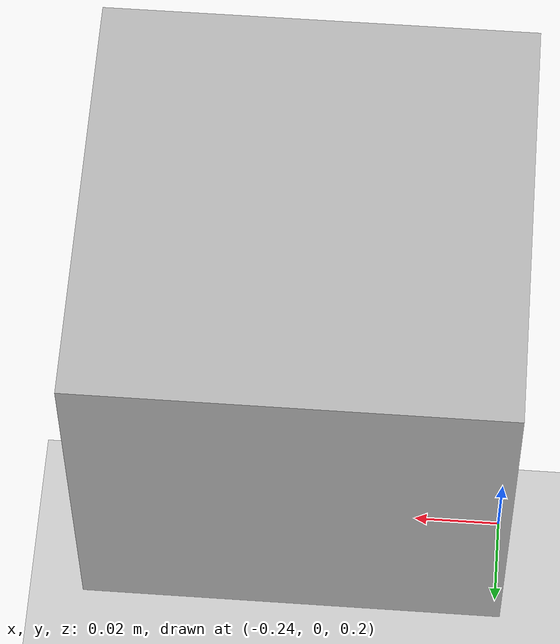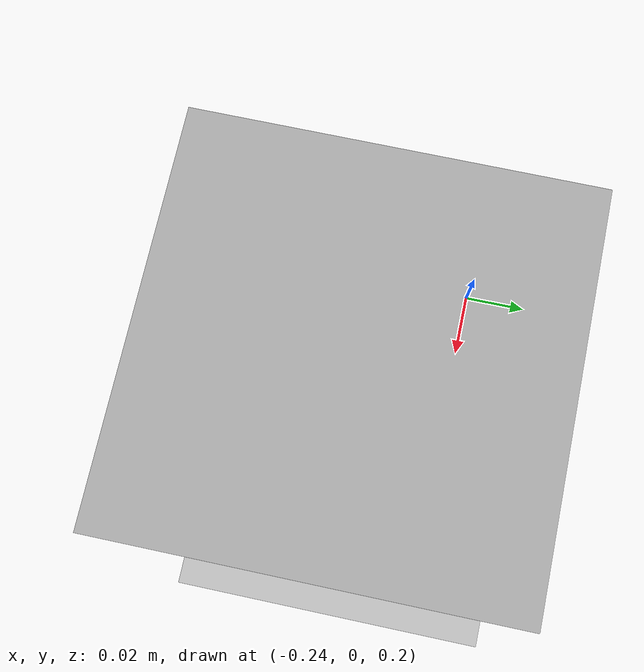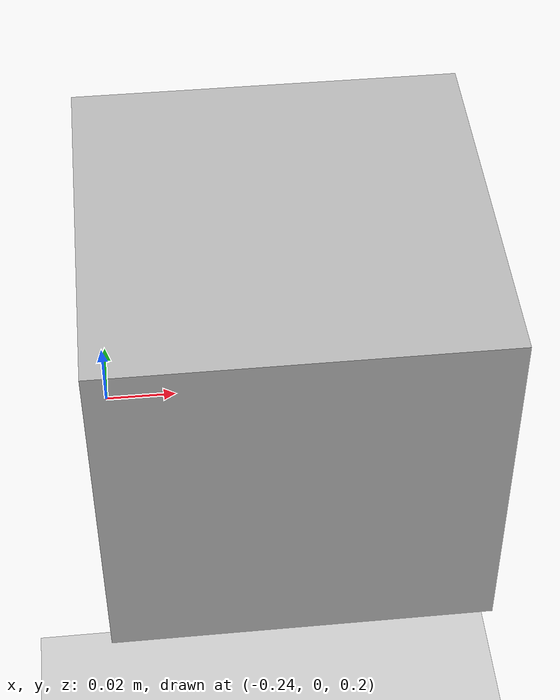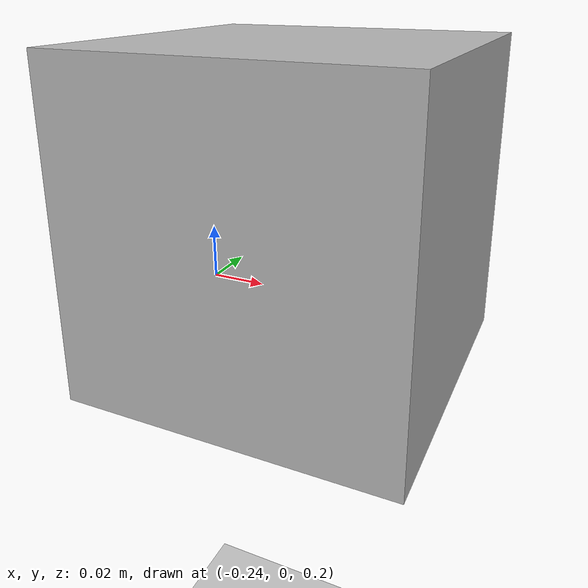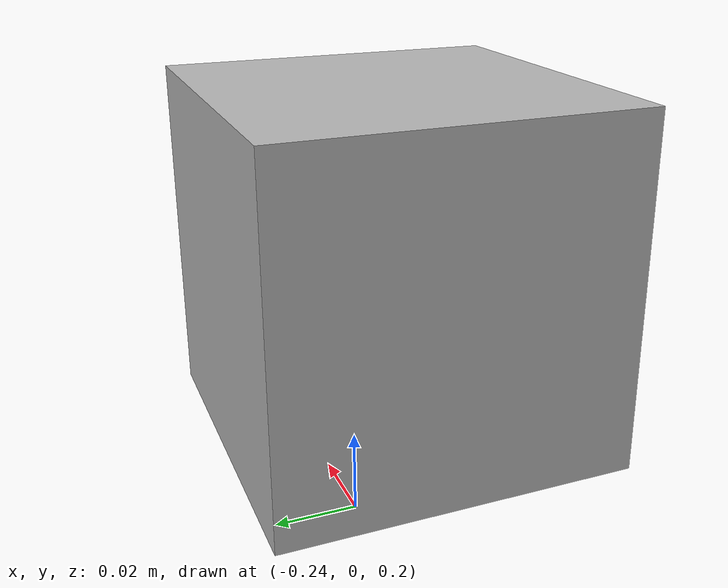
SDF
<sdf version="1.6">
 <world name="default">
  <light name="sun" type="directional">
   <pose>0 0 10 0 -0 0</pose>
   <diffuse>0.8 0.8 0.8 1</diffuse>
   <specular>0.1 0.1 0.1 1</specular>
   <attenuation>
    <range>1000</range>
    <constant>0.9</constant>
    <linear>0.01</linear>
    <quadratic>0.001</quadratic>
   </attenuation>
   <direction>-0.5 0.5 -1</direction>
  </light>
  <model name="ground_plane">
   <static>1</static>
   <link name="link">
    <collision name="collision">
     <geometry><plane><normal>0 0 1</normal><size>100 100</size></plane></geometry>
     <surface><friction><ode><mu>100</mu><mu2>50</mu2></ode></friction></surface>
    </collision>
    <visual name="visual">
     <cast_shadows>0</cast_shadows>
     <geometry><plane><normal>0 0 1</normal><size>100 100</size></plane></geometry>
     <material>
      <script><uri>file://media/materials/scripts/gazebo.material</uri><name>Gazebo/Grey</name></script>
     </material>
    </visual>
   </link>
  </model>
  <gravity>0 0 -9.8</gravity>
  <magnetic_field>6e-06 2.3e-05 -4.2e-05</magnetic_field>
  <atmosphere type="adiabatic"/>
  <physics name="default_physics" default="0" type="ode">
   <max_step_size>0.001</max_step_size>
   <real_time_factor>1</real_time_factor>
   <real_time_update_rate>1000</real_time_update_rate>
  </physics>
  <scene><ambient>0.4 0.4 0.4 1</ambient><background>0.7 0.7 0.7 1</background><shadows>1</shadows></scene>
  <spherical_coordinates>
   <surface_model>EARTH_WGS84</surface_model>
   <latitude_deg>0</latitude_deg>
   <longitude_deg>0</longitude_deg>
   <elevation>0</elevation>
   <heading_deg>0</heading_deg>
  </spherical_coordinates>
  <model name="camera">
   <link name="link">
    <gravity>0</gravity>
    <pose>0.05 0.05 0.05 0 -0 0</pose>
    <inertial>
     <mass>0.1</mass>
     <inertia><ixx>1</ixx><ixy>0</ixy><ixz>0</ixz><iyy>1</iyy><iyz>0</iyz><izz>1</izz></inertia>
    </inertial>
    <visual name="visual"><geometry><box><size>0.1 0.1 0.1</size></box></geometry></visual>
    <sensor name="camera" type="camera">
     <camera name="__default__">
      <horizontal_fov>1.047</horizontal_fov>
      <image><width>320</width><height>240</height></image>
      <clip><near>0.1</near><far>100</far></clip>
     </camera>
     <plugin name="camera_control" filename="libgazebo_ros_camera.so">
      <cameraName>/overhead_cam</cameraName>
      <alwaysOn>true</alwaysOn>
      <updateRate>60</updateRate>
      <imageTopicName>/overhead_cam/image_raw</imageTopicName>
      <cameraInfoTopicName>/overhead_cam/camera_info</cameraInfoTopicName>
      <frameName>overhead_cam</frameName>
     </plugin>
     <always_on>1</always_on>
     <update_rate>30</update_rate>
     <visualize>1</visualize>
    </sensor>
   </link>
   <joint name="camera_link" type="revolute">
    <child>link</child>
    <parent>ground</parent>
    <axis><xyz>1 1 0</xyz><limit><lower>0</lower><upper>0</upper></limit></axis>
   </joint>
   <pose>-0.241549 -0.078999 0.192538 0 -0 0</pose>
  </model>
 </world>
</sdf>
